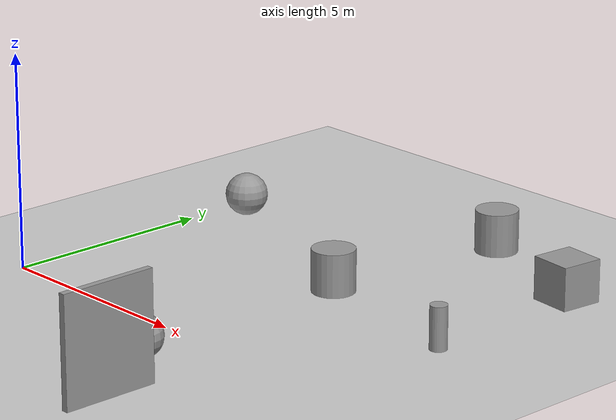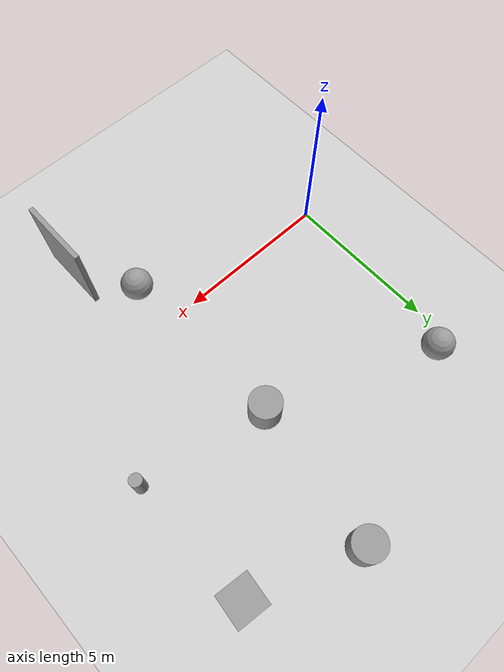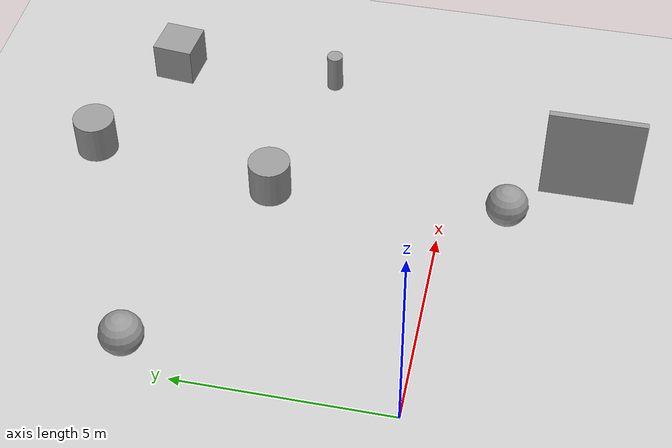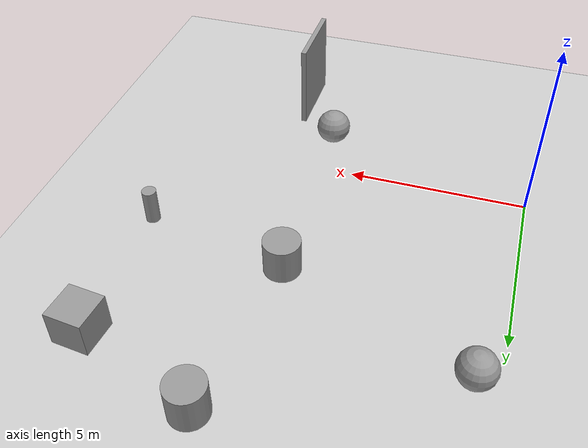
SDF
<sdf version="1.7">
 <world name="default">
  <model name="ground_plane">
   <static>1</static>
   <link name="link">
    <collision name="collision">
     <geometry><plane><normal>0 0 1</normal><size>100 100</size></plane></geometry>
     <surface>
      <contact><collide_bitmask>65535</collide_bitmask></contact>
      <friction><ode><mu>100</mu><mu2>50</mu2></ode></friction>
     </surface>
    </collision>
    <visual name="visual">
     <cast_shadows>0</cast_shadows>
     <geometry><plane><normal>0 0 1</normal><size>100 100</size></plane></geometry>
     <material>
      <script><uri>file://media/materials/scripts/gazebo.material</uri><name>Gazebo/Grey</name></script>
     </material>
    </visual>
   </link>
  </model>
  <model name="unit_cylinder">
   <pose>9.79198 3.39681 0.499999 0 -0 3.00853</pose>
   <link name="link">
    <inertial>
     <mass>1</mass>
     <inertia><ixx>0.145833</ixx><ixy>0</ixy><ixz>0</ixz><iyy>0.145833</iyy><iyz>0</iyz><izz>0.125</izz></inertia>
    </inertial>
    <collision name="collision">
     <geometry><cylinder><radius>0.196826</radius><length>1</length></cylinder></geometry>
    </collision>
    <visual name="visual">
     <geometry><cylinder><radius>0.196826</radius><length>1</length></cylinder></geometry>
     <material>
      <script><name>Gazebo/Grey</name><uri>file://media/materials/scripts/gazebo.material</uri></script>
     </material>
    </visual>
   </link>
  </model>
  <model name="unit_cylinder_3">
   <pose>6.41284 8.6754 0.499994 -4e-06 -2e-06 -0</pose>
   <link name="link">
    <inertial>
     <mass>1</mass>
     <inertia><ixx>0.145833</ixx><ixy>0</ixy><ixz>0</ixz><iyy>0.145833</iyy><iyz>0</iyz><izz>0.125</izz></inertia>
    </inertial>
    <collision name="collision">
     <geometry><cylinder><radius>0.5</radius><length>1</length></cylinder></geometry>
    </collision>
    <visual name="visual">
     <geometry><cylinder><radius>0.5</radius><length>1</length></cylinder></geometry>
     <material>
      <script><name>Gazebo/Grey</name><uri>file://media/materials/scripts/gazebo.material</uri></script>
     </material>
    </visual>
   </link>
  </model>
  <model name="unit_box_3">
   <pose>9.67671 7.46837 0.499997 0 -5e-06 -0.101321</pose>
   <link name="link">
    <inertial>
     <mass>1</mass>
     <inertia>
      <ixx>0.166667</ixx>
      <ixy>0</ixy>
      <ixz>0</ixz>
      <iyy>0.166667</iyy>
      <iyz>0</iyz>
      <izz>0.166667</izz>
     </inertia>
    </inertial>
    <collision name="collision"><geometry><box><size>1 1 1</size></box></geometry></collision>
    <visual name="visual">
     <geometry><box><size>1 1 1</size></box></geometry>
     <material>
      <script><name>Gazebo/Grey</name><uri>file://media/materials/scripts/gazebo.material</uri></script>
     </material>
    </visual>
   </link>
  </model>
  <model name="unit_sphere_0">
   <pose>0.627129 6.17429 0.5 -0.004348 -0.000283 -0.176285</pose>
   <link name="link">
    <inertial>
     <mass>1</mass>
     <inertia><ixx>0.1</ixx><ixy>0</ixy><ixz>0</ixz><iyy>0.1</iyy><iyz>0</iyz><izz>0.1</izz></inertia>
    </inertial>
    <collision name="collision"><geometry><sphere><radius>0.5</radius></sphere></geometry></collision>
    <visual name="visual">
     <geometry><sphere><radius>0.5</radius></sphere></geometry>
     <material>
      <script><name>Gazebo/Grey</name><uri>file://media/materials/scripts/gazebo.material</uri></script>
     </material>
    </visual>
   </link>
  </model>
  <model name="unit_sphere_3">
   <pose>5.97619 -1.48456 0.5 0 -0 0</pose>
   <link name="link">
    <inertial>
     <mass>1</mass>
     <inertia><ixx>0.1</ixx><ixy>0</ixy><ixz>0</ixz><iyy>0.1</iyy><iyz>0</iyz><izz>0.1</izz></inertia>
    </inertial>
    <collision name="collision"><geometry><sphere><radius>0.5</radius></sphere></geometry></collision>
    <visual name="visual">
     <geometry><sphere><radius>0.5</radius></sphere></geometry>
     <material>
      <script><name>Gazebo/Grey</name><uri>file://media/materials/scripts/gazebo.material</uri></script>
     </material>
    </visual>
   </link>
  </model>
  <model name="unit_cylinder_6">
   <pose>5.79341 4.15103 0.499992 -3e-06 2e-06 0</pose>
   <link name="link">
    <inertial>
     <mass>1</mass>
     <inertia><ixx>0.145833</ixx><ixy>0</ixy><ixz>0</ixz><iyy>0.145833</iyy><iyz>0</iyz><izz>0.125</izz></inertia>
    </inertial>
    <collision name="collision">
     <geometry><cylinder><radius>0.5</radius><length>1</length></cylinder></geometry>
    </collision>
    <visual name="visual">
     <geometry><cylinder><radius>0.5</radius><length>1</length></cylinder></geometry>
     <material>
      <script><name>Gazebo/Grey</name><uri>file://media/materials/scripts/gazebo.material</uri></script>
     </material>
    </visual>
   </link>
  </model>
  <model name="walls2_0">
   <pose>3.6075 -2.1975 0 0 -0 0</pose>
   <link name="Wall_1">
    <collision name="Wall_1_Collision">
     <geometry><box><size>2.25 0.15 2.5</size></box></geometry>
     <pose>0 0 1.25 0 -0 0</pose>
    </collision>
    <visual name="Wall_1_Visual">
     <pose>0 0 1.25 0 -0 0</pose>
     <geometry><box><size>2.25 0.15 2.5</size></box></geometry>
     <material>
      <script><uri>file://media/materials/scripts/gazebo.material</uri><name>Gazebo/Grey</name></script>
      <ambient>1 1 1 1</ambient>
     </material>
     <meta><layer>0</layer></meta>
    </visual>
    <pose>3.5325 -1.0725 0 0 -0 -1.5708</pose>
   </link>
   <static>1</static>
  </model>
 </world>
</sdf>
